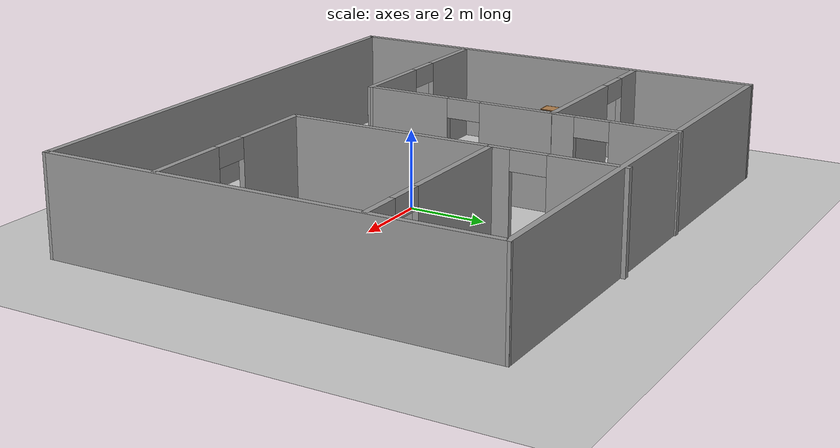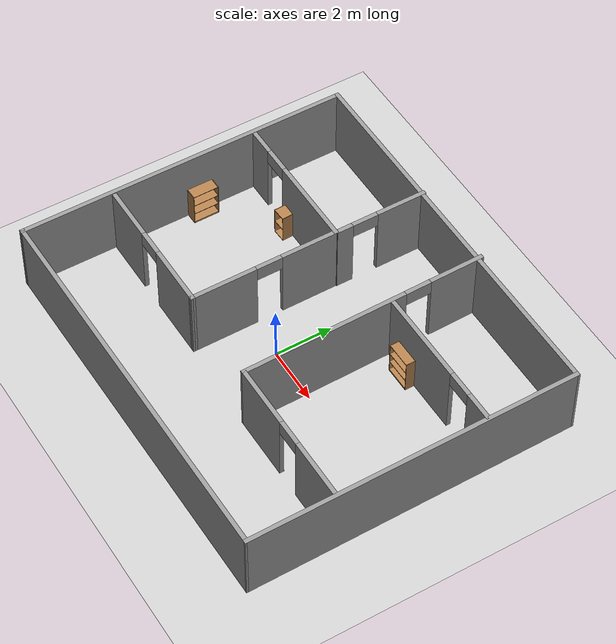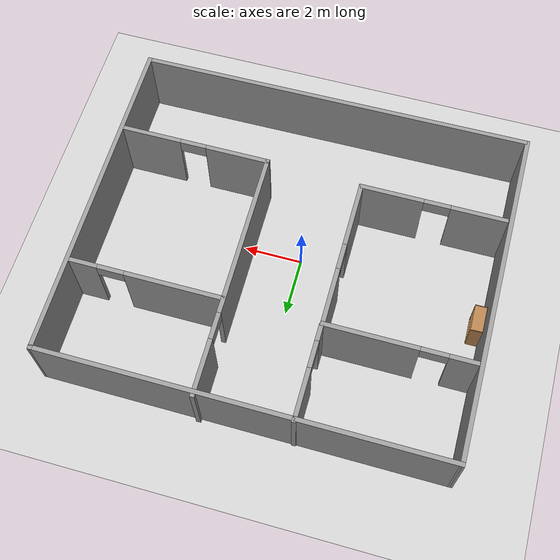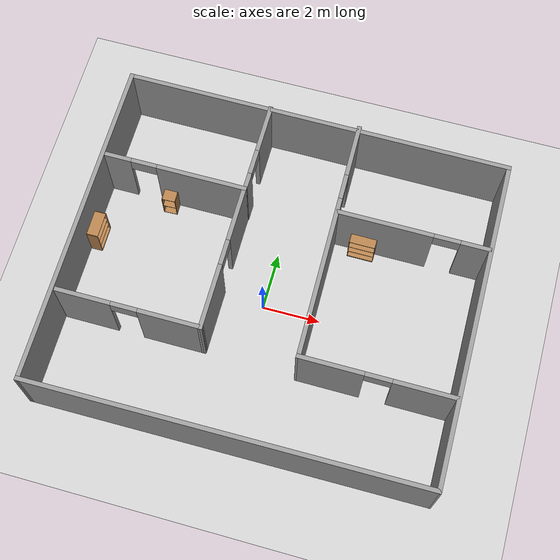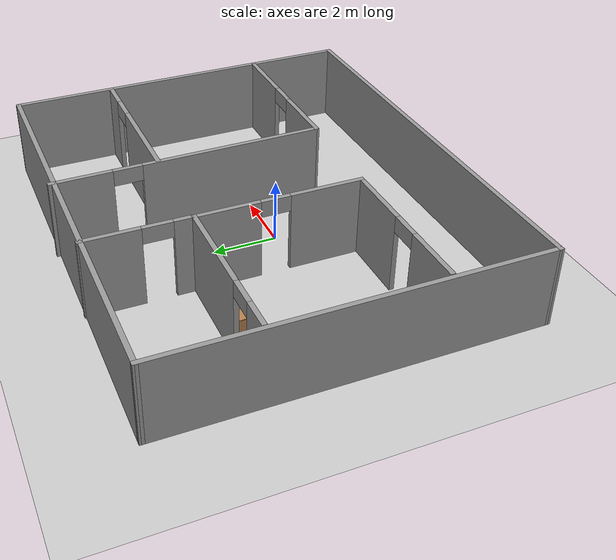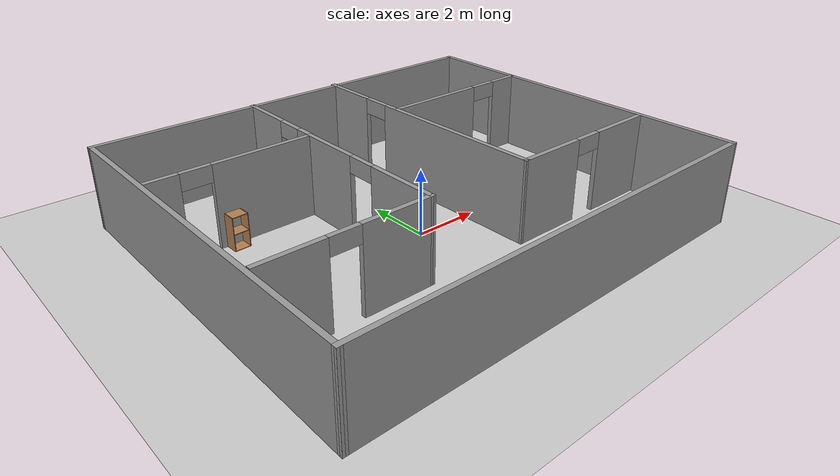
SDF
<sdf version="1.7">
 <world name="default">
  <light name="sun" type="directional">
   <pose>0 0 10 0 -0 0</pose>
   <diffuse>0.8 0.8 0.8 1</diffuse>
   <specular>0.2 0.2 0.2 1</specular>
   <attenuation>
    <range>1000</range>
    <constant>0.9</constant>
    <linear>0.01</linear>
    <quadratic>0.001</quadratic>
   </attenuation>
   <direction>-0.5 0.1 -0.9</direction>
   <spot><inner_angle>0</inner_angle><outer_angle>0</outer_angle><falloff>0</falloff></spot>
  </light>
  <model name="ground_plane">
   <static>1</static>
   <link name="link">
    <collision name="collision">
     <geometry><plane><normal>0 0 1</normal><size>100 100</size></plane></geometry>
     <surface><friction><ode><mu>100</mu><mu2>50</mu2></ode></friction></surface>
    </collision>
    <visual name="visual">
     <cast_shadows>0</cast_shadows>
     <geometry><plane><normal>0 0 1</normal><size>100 100</size></plane></geometry>
     <material>
      <script><uri>file://media/materials/scripts/gazebo.material</uri><name>Gazebo/Grey</name></script>
     </material>
    </visual>
   </link>
  </model>
  <gravity>0 0 -9.8</gravity>
  <magnetic_field>6e-06 2.3e-05 -4.2e-05</magnetic_field>
  <atmosphere type="adiabatic"/>
  <physics type="ode">
   <max_step_size>0.001</max_step_size>
   <real_time_factor>1</real_time_factor>
   <real_time_update_rate>1000</real_time_update_rate>
  </physics>
  <scene><ambient>0.4 0.4 0.4 1</ambient><background>0.7 0.7 0.7 1</background><shadows>1</shadows></scene>
  <audio><device>default</device></audio>
  <spherical_coordinates>
   <surface_model>EARTH_WGS84</surface_model>
   <latitude_deg>0</latitude_deg>
   <longitude_deg>0</longitude_deg>
   <elevation>0</elevation>
   <heading_deg>0</heading_deg>
  </spherical_coordinates>
  <model name="my_floor">
   <pose>0.238675 0.550235 0 0 -0 0</pose>
   <link name="Wall_1">
    <collision name="Wall_1_Collision">
     <geometry><box><size>13.6253 0.15 2.5</size></box></geometry>
     <pose>0 0 1.25 0 -0 0</pose>
    </collision>
    <visual name="Wall_1_Visual">
     <pose>0 0 1.25 0 -0 0</pose>
     <geometry><box><size>13.6253 0.15 2.5</size></box></geometry>
     <material>
      <script><uri>file://media/materials/scripts/gazebo.material</uri><name>Gazebo/Grey</name></script>
      <ambient>1 1 1 1</ambient>
     </material>
     <meta><layer>0</layer></meta>
    </visual>
    <pose>0 -5.70464 0 0 -0 -3.13482</pose>
   </link>
   <link name="Wall_2">
    <collision name="Wall_2_Collision">
     <geometry><box><size>11.5603 0.15 2.5</size></box></geometry>
     <pose>0 0 1.25 0 -0 0</pose>
    </collision>
    <visual name="Wall_2_Visual">
     <pose>0 0 1.25 0 -0 0</pose>
     <geometry><box><size>11.5603 0.15 2.5</size></box></geometry>
     <material>
      <script><uri>file://media/materials/scripts/gazebo.material</uri><name>Gazebo/Grey</name></script>
      <ambient>1 1 1 1</ambient>
     </material>
     <meta><layer>0</layer></meta>
    </visual>
    <pose>-6.7358 -0.045104 0 0 -0 1.5705</pose>
   </link>
   <link name="Wall_3">
    <collision name="Wall_3_Collision">
     <geometry><box><size>13.5486 0.15 2.5</size></box></geometry>
     <pose>0 0 1.25 0 -0 0</pose>
    </collision>
    <visual name="Wall_3_Visual">
     <pose>0 0 1.25 0 -0 0</pose>
     <geometry><box><size>13.5486 0.15 2.5</size></box></geometry>
     <material>
      <script><uri>file://media/materials/scripts/gazebo.material</uri><name>Gazebo/Grey</name></script>
      <ambient>1 1 1 1</ambient>
     </material>
     <meta><layer>0</layer></meta>
    </visual>
    <pose>-0.034858 5.64476 0 0 -0 -0.002283</pose>
   </link>
   <link name="Wall_35">
    <pose>-4.14035 -2.59699 0 0 -0 3.14159</pose>
    <visual name="Wall_35_Visual_0">
     <pose>-1.40271 0 1.25 0 -0 0</pose>
     <geometry><box><size>2.19458 0.15 2.5</size></box></geometry>
     <material>
      <script><uri>file://media/materials/scripts/gazebo.material</uri><name>Gazebo/Grey</name></script>
      <ambient>1 1 1 1</ambient>
     </material>
     <meta><layer>0</layer></meta>
    </visual>
    <collision name="Wall_35_Collision_0">
     <geometry><box><size>2.19458 0.15 2.5</size></box></geometry>
     <pose>-1.40271 0 1.25 0 -0 0</pose>
    </collision>
    <visual name="Wall_35_Visual_1">
     <pose>1.54729 0 1.25 0 -0 0</pose>
     <geometry><box><size>1.90542 0.15 2.5</size></box></geometry>
     <material>
      <script><uri>file://media/materials/scripts/gazebo.material</uri><name>Gazebo/Grey</name></script>
      <ambient>1 1 1 1</ambient>
     </material>
     <meta><layer>0</layer></meta>
    </visual>
    <collision name="Wall_35_Collision_1">
     <geometry><box><size>1.90542 0.15 2.5</size></box></geometry>
     <pose>1.54729 0 1.25 0 -0 0</pose>
    </collision>
    <visual name="Wall_35_Visual_2">
     <pose>0.144579 0 2.25 0 -0 0</pose>
     <geometry><box><size>0.9 0.15 0.5</size></box></geometry>
     <material>
      <script><uri>file://media/materials/scripts/gazebo.material</uri><name>Gazebo/Grey</name></script>
      <ambient>1 1 1 1</ambient>
     </material>
     <meta><layer>0</layer></meta>
    </visual>
    <collision name="Wall_35_Collision_2">
     <geometry><box><size>0.9 0.15 0.5</size></box></geometry>
     <pose>0.144579 0 2.25 0 -0 0</pose>
    </collision>
   </link>
   <link name="Wall_38">
    <pose>-1.72187 -0.049486 0 0 -0 -1.56824</pose>
    <visual name="Wall_38_Visual_0">
     <pose>-1.60831 0 1.25 0 -0 0</pose>
     <geometry><box><size>2.0284 0.15 2.5</size></box></geometry>
     <material>
      <script><uri>file://media/materials/scripts/gazebo.material</uri><name>Gazebo/Grey</name></script>
      <ambient>1 1 1 1</ambient>
     </material>
     <meta><layer>0</layer></meta>
    </visual>
    <collision name="Wall_38_Collision_0">
     <geometry><box><size>2.0284 0.15 2.5</size></box></geometry>
     <pose>-1.60831 0 1.25 0 -0 0</pose>
    </collision>
    <visual name="Wall_38_Visual_1">
     <pose>1.4642 0 1.25 0 -0 0</pose>
     <geometry><box><size>2.31662 0.15 2.5</size></box></geometry>
     <material>
      <script><uri>file://media/materials/scripts/gazebo.material</uri><name>Gazebo/Grey</name></script>
      <ambient>1 1 1 1</ambient>
     </material>
     <meta><layer>0</layer></meta>
    </visual>
    <collision name="Wall_38_Collision_1">
     <geometry><box><size>2.31662 0.15 2.5</size></box></geometry>
     <pose>1.4642 0 1.25 0 -0 0</pose>
    </collision>
    <visual name="Wall_38_Visual_2">
     <pose>-0.144109 0 2.25 0 -0 0</pose>
     <geometry><box><size>0.9 0.15 0.5</size></box></geometry>
     <material>
      <script><uri>file://media/materials/scripts/gazebo.material</uri><name>Gazebo/Grey</name></script>
      <ambient>1 1 1 1</ambient>
     </material>
     <meta><layer>0</layer></meta>
    </visual>
    <collision name="Wall_38_Collision_2">
     <geometry><box><size>0.9 0.15 0.5</size></box></geometry>
     <pose>-0.144109 0 2.25 0 -0 0</pose>
    </collision>
   </link>
   <link name="Wall_4">
    <collision name="Wall_4_Collision">
     <geometry><box><size>11.4387 0.15 2.5</size></box></geometry>
     <pose>0 0 1.25 0 -0 0</pose>
    </collision>
    <visual name="Wall_4_Visual">
     <pose>0 0 1.25 0 -0 0</pose>
     <geometry><box><size>11.4387 0.15 2.5</size></box></geometry>
     <material>
      <script><uri>file://media/materials/scripts/gazebo.material</uri><name>Gazebo/Grey</name></script>
      <ambient>1 1 1 1</ambient>
     </material>
     <meta><layer>0</layer></meta>
    </visual>
    <pose>6.70094 -0.014773 0 0 -0 -1.56432</pose>
   </link>
   <link name="Wall_41">
    <pose>-4.15338 2.49802 0 0 -0 3.14159</pose>
    <visual name="Wall_41_Visual_0">
     <pose>-0.921541 0 1.25 0 -0 0</pose>
     <geometry><box><size>3.15692 0.15 2.5</size></box></geometry>
     <material>
      <script><uri>file://media/materials/scripts/gazebo.material</uri><name>Gazebo/Grey</name></script>
      <ambient>1 1 1 1</ambient>
     </material>
     <meta><layer>0</layer></meta>
    </visual>
    <collision name="Wall_41_Collision_0">
     <geometry><box><size>3.15692 0.15 2.5</size></box></geometry>
     <pose>-0.921541 0 1.25 0 -0 0</pose>
    </collision>
    <visual name="Wall_41_Visual_1">
     <pose>2.02846 0 1.25 0 -0 0</pose>
     <geometry><box><size>0.943082 0.15 2.5</size></box></geometry>
     <material>
      <script><uri>file://media/materials/scripts/gazebo.material</uri><name>Gazebo/Grey</name></script>
      <ambient>1 1 1 1</ambient>
     </material>
     <meta><layer>0</layer></meta>
    </visual>
    <collision name="Wall_41_Collision_1">
     <geometry><box><size>0.943082 0.15 2.5</size></box></geometry>
     <pose>2.02846 0 1.25 0 -0 0</pose>
    </collision>
    <visual name="Wall_41_Visual_2">
     <pose>1.10692 0 2.25 0 -0 0</pose>
     <geometry><box><size>0.9 0.15 0.5</size></box></geometry>
     <material>
      <script><uri>file://media/materials/scripts/gazebo.material</uri><name>Gazebo/Grey</name></script>
      <ambient>1 1 1 1</ambient>
     </material>
     <meta><layer>0</layer></meta>
    </visual>
    <collision name="Wall_41_Collision_2">
     <geometry><box><size>0.9 0.15 0.5</size></box></geometry>
     <pose>1.10692 0 2.25 0 -0 0</pose>
    </collision>
   </link>
   <link name="Wall_43">
    <pose>-1.70724 4.13806 0 0 -0 -1.5708</pose>
    <visual name="Wall_43_Visual_0">
     <pose>-0.739548 0 1.25 0 -0 0</pose>
     <geometry><box><size>1.7709 0.15 2.5</size></box></geometry>
     <material>
      <script><uri>file://media/materials/scripts/gazebo.material</uri><name>Gazebo/Grey</name></script>
      <ambient>1 1 1 1</ambient>
     </material>
     <meta><layer>0</layer></meta>
    </visual>
    <collision name="Wall_43_Collision_0">
     <geometry><box><size>1.7709 0.15 2.5</size></box></geometry>
     <pose>-0.739548 0 1.25 0 -0 0</pose>
    </collision>
    <visual name="Wall_43_Visual_1">
     <pose>1.33545 0 1.25 0 -0 0</pose>
     <geometry><box><size>0.579095 0.15 2.5</size></box></geometry>
     <material>
      <script><uri>file://media/materials/scripts/gazebo.material</uri><name>Gazebo/Grey</name></script>
      <ambient>1 1 1 1</ambient>
     </material>
     <meta><layer>0</layer></meta>
    </visual>
    <collision name="Wall_43_Collision_1">
     <geometry><box><size>0.579095 0.15 2.5</size></box></geometry>
     <pose>1.33545 0 1.25 0 -0 0</pose>
    </collision>
    <visual name="Wall_43_Visual_2">
     <pose>0.595905 0 2.25 0 -0 0</pose>
     <geometry><box><size>0.9 0.15 0.5</size></box></geometry>
     <material>
      <script><uri>file://media/materials/scripts/gazebo.material</uri><name>Gazebo/Grey</name></script>
      <ambient>1 1 1 1</ambient>
     </material>
     <meta><layer>0</layer></meta>
    </visual>
    <collision name="Wall_43_Collision_2">
     <geometry><box><size>0.9 0.15 0.5</size></box></geometry>
     <pose>0.595905 0 2.25 0 -0 0</pose>
    </collision>
   </link>
   <link name="Wall_45">
    <pose>1.48234 1.52881 0 0 -0 -1.5563</pose>
    <visual name="Wall_45_Visual_0">
     <pose>-3.33482 0 1.25 0 -0 0</pose>
     <geometry><box><size>1.92302 0.15 2.5</size></box></geometry>
     <material>
      <script><uri>file://media/materials/scripts/gazebo.material</uri><name>Gazebo/Grey</name></script>
      <ambient>1 1 1 1</ambient>
     </material>
     <meta><layer>0</layer></meta>
    </visual>
    <collision name="Wall_45_Collision_0">
     <geometry><box><size>1.92302 0.15 2.5</size></box></geometry>
     <pose>-3.33482 0 1.25 0 -0 0</pose>
    </collision>
    <visual name="Wall_45_Visual_1">
     <pose>1.41151 0 1.25 0 -0 0</pose>
     <geometry><box><size>5.76964 0.15 2.5</size></box></geometry>
     <material>
      <script><uri>file://media/materials/scripts/gazebo.material</uri><name>Gazebo/Grey</name></script>
      <ambient>1 1 1 1</ambient>
     </material>
     <meta><layer>0</layer></meta>
    </visual>
    <collision name="Wall_45_Collision_1">
     <geometry><box><size>5.76964 0.15 2.5</size></box></geometry>
     <pose>1.41151 0 1.25 0 -0 0</pose>
    </collision>
    <visual name="Wall_45_Visual_2">
     <pose>-1.92331 0 2.25 0 -0 0</pose>
     <geometry><box><size>0.9 0.15 0.5</size></box></geometry>
     <material>
      <script><uri>file://media/materials/scripts/gazebo.material</uri><name>Gazebo/Grey</name></script>
      <ambient>1 1 1 1</ambient>
     </material>
     <meta><layer>0</layer></meta>
    </visual>
    <collision name="Wall_45_Collision_2">
     <geometry><box><size>0.9 0.15 0.5</size></box></geometry>
     <pose>-1.92331 0 2.25 0 -0 0</pose>
    </collision>
   </link>
   <link name="Wall_49">
    <pose>4.09352 -2.69208 0 0 -0 0</pose>
    <visual name="Wall_49_Visual_0">
     <pose>-1.51242 0 1.25 0 -0 0</pose>
     <geometry><box><size>2.22517 0.15 2.5</size></box></geometry>
     <material>
      <script><uri>file://media/materials/scripts/gazebo.material</uri><name>Gazebo/Grey</name></script>
      <ambient>1 1 1 1</ambient>
     </material>
     <meta><layer>0</layer></meta>
    </visual>
    <collision name="Wall_49_Collision_0">
     <geometry><box><size>2.22517 0.15 2.5</size></box></geometry>
     <pose>-1.51242 0 1.25 0 -0 0</pose>
    </collision>
    <visual name="Wall_49_Visual_1">
     <pose>1.56258 0 1.25 0 -0 0</pose>
     <geometry><box><size>2.12483 0.15 2.5</size></box></geometry>
     <material>
      <script><uri>file://media/materials/scripts/gazebo.material</uri><name>Gazebo/Grey</name></script>
      <ambient>1 1 1 1</ambient>
     </material>
     <meta><layer>0</layer></meta>
    </visual>
    <collision name="Wall_49_Collision_1">
     <geometry><box><size>2.12483 0.15 2.5</size></box></geometry>
     <pose>1.56258 0 1.25 0 -0 0</pose>
    </collision>
    <visual name="Wall_49_Visual_2">
     <pose>0.050169 0 2.25 0 -0 0</pose>
     <geometry><box><size>0.9 0.15 0.5</size></box></geometry>
     <material>
      <script><uri>file://media/materials/scripts/gazebo.material</uri><name>Gazebo/Grey</name></script>
      <ambient>1 1 1 1</ambient>
     </material>
     <meta><layer>0</layer></meta>
    </visual>
    <collision name="Wall_49_Collision_2">
     <geometry><box><size>0.9 0.15 0.5</size></box></geometry>
     <pose>0.050169 0 2.25 0 -0 0</pose>
    </collision>
   </link>
   <link name="Wall_51">
    <pose>4.0715 2.50713 0 0 -0 3.14159</pose>
    <visual name="Wall_51_Visual_0">
     <pose>-2.10893 0 1.25 0 -0 0</pose>
     <geometry><box><size>1.03215 0.15 2.5</size></box></geometry>
     <material>
      <script><uri>file://media/materials/scripts/gazebo.material</uri><name>Gazebo/Grey</name></script>
      <ambient>1 1 1 1</ambient>
     </material>
     <meta><layer>0</layer></meta>
    </visual>
    <collision name="Wall_51_Collision_0">
     <geometry><box><size>1.03215 0.15 2.5</size></box></geometry>
     <pose>-2.10893 0 1.25 0 -0 0</pose>
    </collision>
    <visual name="Wall_51_Visual_1">
     <pose>0.966075 0 1.25 0 -0 0</pose>
     <geometry><box><size>3.31785 0.15 2.5</size></box></geometry>
     <material>
      <script><uri>file://media/materials/scripts/gazebo.material</uri><name>Gazebo/Grey</name></script>
      <ambient>1 1 1 1</ambient>
     </material>
     <meta><layer>0</layer></meta>
    </visual>
    <collision name="Wall_51_Collision_1">
     <geometry><box><size>3.31785 0.15 2.5</size></box></geometry>
     <pose>0.966075 0 1.25 0 -0 0</pose>
    </collision>
    <visual name="Wall_51_Visual_2">
     <pose>-1.14285 0 2.25 0 -0 0</pose>
     <geometry><box><size>0.9 0.15 0.5</size></box></geometry>
     <material>
      <script><uri>file://media/materials/scripts/gazebo.material</uri><name>Gazebo/Grey</name></script>
      <ambient>1 1 1 1</ambient>
     </material>
     <meta><layer>0</layer></meta>
    </visual>
    <collision name="Wall_51_Collision_2">
     <geometry><box><size>0.9 0.15 0.5</size></box></geometry>
     <pose>-1.14285 0 2.25 0 -0 0</pose>
    </collision>
   </link>
   <static>1</static>
  </model>
  <model name="cabinet">
   <static>1</static>
   <link name="cabinet_bottom_plate">
    <inertial>
     <pose>0 0 -1 0 -0 0</pose>
     <inertia><ixx>2.05</ixx><ixy>0</ixy><ixz>0</ixz><iyy>2.05</iyy><iyz>0</iyz><izz>2.05</izz></inertia>
     <mass>25</mass>
    </inertial>
    <collision name="cabinet_bottom_plate_geom">
     <pose>0 0 0.01 0 -0 0</pose>
     <geometry><box><size>0.45 0.45 0.02</size></box></geometry>
    </collision>
    <visual name="cabinet_bottom_plate_geom_visual">
     <pose>0 0 0.01 0 -0 0</pose>
     <geometry><box><size>0.45 0.45 0.02</size></box></geometry>
     <material>
      <script><uri>file://media/materials/scripts/gazebo.material</uri><name>Gazebo/Wood</name></script>
     </material>
    </visual>
    <collision name="cabinet_bottom_plate_geom_cabinet_back_plate">
     <pose>0.235 0 0.51 0 -0 0</pose>
     <geometry><box><size>0.02 0.45 1.02</size></box></geometry>
    </collision>
    <visual name="cabinet_bottom_plate_geom_cabinet_back_plate_visual">
     <pose>0.235 0 0.51 0 -0 0</pose>
     <geometry><box><size>0.02 0.45 1.02</size></box></geometry>
     <material>
      <script><uri>file://media/materials/scripts/gazebo.material</uri><name>Gazebo/Wood</name></script>
     </material>
    </visual>
    <collision name="cabinet_bottom_plate_geom_cabinet_left_plate">
     <pose>0 0.235 0.51 0 -0 0</pose>
     <geometry><box><size>0.45 0.02 1.02</size></box></geometry>
    </collision>
    <visual name="cabinet_bottom_plate_geom_cabinet_left_plate_visual">
     <pose>0 0.235 0.51 0 -0 0</pose>
     <geometry><box><size>0.45 0.02 1.02</size></box></geometry>
     <material>
      <script><uri>file://media/materials/scripts/gazebo.material</uri><name>Gazebo/Wood</name></script>
     </material>
    </visual>
    <collision name="cabinet_bottom_plate_geom_cabinet_middle_plate">
     <pose>0 0 0.51 0 -0 0</pose>
     <geometry><box><size>0.45 0.45 0.02</size></box></geometry>
    </collision>
    <visual name="cabinet_bottom_plate_geom_cabinet_middle_plate_visual">
     <pose>0 0 0.51 0 -0 0</pose>
     <geometry><box><size>0.45 0.45 0.02</size></box></geometry>
     <material>
      <script><uri>file://media/materials/scripts/gazebo.material</uri><name>Gazebo/Wood</name></script>
     </material>
    </visual>
    <collision name="cabinet_bottom_plate_geom_cabinet_right_plate">
     <pose>0 -0.235 0.51 0 -0 0</pose>
     <geometry><box><size>0.45 0.02 1.02</size></box></geometry>
    </collision>
    <visual name="cabinet_bottom_plate_geom_cabinet_right_plate_visual">
     <pose>0 -0.235 0.51 0 -0 0</pose>
     <geometry><box><size>0.45 0.02 1.02</size></box></geometry>
     <material>
      <script><uri>file://media/materials/scripts/gazebo.material</uri><name>Gazebo/Wood</name></script>
     </material>
    </visual>
    <collision name="cabinet_bottom_plate_geom_cabinet_top_plate">
     <pose>0 0 1.01 0 -0 0</pose>
     <geometry><box><size>0.45 0.45 0.02</size></box></geometry>
    </collision>
    <visual name="cabinet_bottom_plate_geom_cabinet_top_plate_visual">
     <pose>0 0 1.01 0 -0 0</pose>
     <geometry><box><size>0.45 0.45 0.02</size></box></geometry>
     <material>
      <script><uri>file://media/materials/scripts/gazebo.material</uri><name>Gazebo/Wood</name></script>
     </material>
    </visual>
   </link>
   <pose>-4.15753 2.8043 0 0 -0 1.60747</pose>
  </model>
  <model name="bookshelf">
   <static>1</static>
   <link name="link">
    <inertial><mass>1</mass></inertial>
    <collision name="back">
     <pose>0 0.005 0.6 0 -0 0</pose>
     <geometry><box><size>0.9 0.01 1.2</size></box></geometry>
    </collision>
    <visual name="visual1">
     <pose>0 0.005 0.6 0 -0 0</pose>
     <geometry><box><size>0.9 0.01 1.2</size></box></geometry>
     <material>
      <script><uri>file://media/materials/scripts/gazebo.material</uri><name>Gazebo/Wood</name></script>
     </material>
    </visual>
    <collision name="left_side">
     <pose>0.45 -0.195 0.6 0 -0 0</pose>
     <geometry><box><size>0.02 0.4 1.2</size></box></geometry>
    </collision>
    <visual name="visual2">
     <pose>0.45 -0.195 0.6 0 -0 0</pose>
     <geometry><box><size>0.02 0.4 1.2</size></box></geometry>
     <material>
      <script><uri>file://media/materials/scripts/gazebo.material</uri><name>Gazebo/Wood</name></script>
     </material>
    </visual>
    <collision name="right_side">
     <pose>-0.45 -0.195 0.6 0 -0 0</pose>
     <geometry><box><size>0.02 0.4 1.2</size></box></geometry>
    </collision>
    <visual name="visual3">
     <pose>-0.45 -0.195 0.6 0 -0 0</pose>
     <geometry><box><size>0.02 0.4 1.2</size></box></geometry>
     <material>
      <script><uri>file://media/materials/scripts/gazebo.material</uri><name>Gazebo/Wood</name></script>
     </material>
    </visual>
    <collision name="bottom">
     <pose>0 -0.195 0.03 0 -0 0</pose>
     <geometry><box><size>0.88 0.4 0.06</size></box></geometry>
    </collision>
    <visual name="visual4">
     <pose>0 -0.195 0.03 0 -0 0</pose>
     <geometry><box><size>0.88 0.4 0.06</size></box></geometry>
     <material>
      <script><uri>file://media/materials/scripts/gazebo.material</uri><name>Gazebo/Wood</name></script>
     </material>
    </visual>
    <collision name="top">
     <pose>0 -0.195 1.19 0 -0 0</pose>
     <geometry><box><size>0.88 0.4 0.02</size></box></geometry>
    </collision>
    <visual name="visual5">
     <pose>0 -0.195 1.19 0 -0 0</pose>
     <geometry><box><size>0.88 0.4 0.02</size></box></geometry>
     <material>
      <script><uri>file://media/materials/scripts/gazebo.material</uri><name>Gazebo/Wood</name></script>
     </material>
    </visual>
    <collision name="low_shelf">
     <pose>0 -0.195 0.43 0 -0 0</pose>
     <geometry><box><size>0.88 0.4 0.02</size></box></geometry>
    </collision>
    <visual name="visual6">
     <pose>0 -0.195 0.43 0 -0 0</pose>
     <geometry><box><size>0.88 0.4 0.02</size></box></geometry>
     <material>
      <script><uri>file://media/materials/scripts/gazebo.material</uri><name>Gazebo/Wood</name></script>
     </material>
    </visual>
    <collision name="high_shelf">
     <pose>0 -0.195 0.8 0 -0 0</pose>
     <geometry><box><size>0.88 0.4 0.02</size></box></geometry>
    </collision>
    <visual name="visual7">
     <pose>0 -0.195 0.8 0 -0 0</pose>
     <geometry><box><size>0.88 0.4 0.02</size></box></geometry>
     <material>
      <script><uri>file://media/materials/scripts/gazebo.material</uri><name>Gazebo/Wood</name></script>
     </material>
    </visual>
   </link>
   <pose>2.76293 3.0546 0 0 -0 0</pose>
  </model>
  <model name="bookshelf_0">
   <static>1</static>
   <link name="link">
    <inertial><mass>1</mass></inertial>
    <collision name="back">
     <pose>0 0.005 0.6 0 -0 0</pose>
     <geometry><box><size>0.9 0.01 1.2</size></box></geometry>
    </collision>
    <visual name="visual1">
     <pose>0 0.005 0.6 0 -0 0</pose>
     <geometry><box><size>0.9 0.01 1.2</size></box></geometry>
     <material>
      <script><uri>file://media/materials/scripts/gazebo.material</uri><name>Gazebo/Wood</name></script>
     </material>
    </visual>
    <collision name="left_side">
     <pose>0.45 -0.195 0.6 0 -0 0</pose>
     <geometry><box><size>0.02 0.4 1.2</size></box></geometry>
    </collision>
    <visual name="visual2">
     <pose>0.45 -0.195 0.6 0 -0 0</pose>
     <geometry><box><size>0.02 0.4 1.2</size></box></geometry>
     <material>
      <script><uri>file://media/materials/scripts/gazebo.material</uri><name>Gazebo/Wood</name></script>
     </material>
    </visual>
    <collision name="right_side">
     <pose>-0.45 -0.195 0.6 0 -0 0</pose>
     <geometry><box><size>0.02 0.4 1.2</size></box></geometry>
    </collision>
    <visual name="visual3">
     <pose>-0.45 -0.195 0.6 0 -0 0</pose>
     <geometry><box><size>0.02 0.4 1.2</size></box></geometry>
     <material>
      <script><uri>file://media/materials/scripts/gazebo.material</uri><name>Gazebo/Wood</name></script>
     </material>
    </visual>
    <collision name="bottom">
     <pose>0 -0.195 0.03 0 -0 0</pose>
     <geometry><box><size>0.88 0.4 0.06</size></box></geometry>
    </collision>
    <visual name="visual4">
     <pose>0 -0.195 0.03 0 -0 0</pose>
     <geometry><box><size>0.88 0.4 0.06</size></box></geometry>
     <material>
      <script><uri>file://media/materials/scripts/gazebo.material</uri><name>Gazebo/Wood</name></script>
     </material>
    </visual>
    <collision name="top">
     <pose>0 -0.195 1.19 0 -0 0</pose>
     <geometry><box><size>0.88 0.4 0.02</size></box></geometry>
    </collision>
    <visual name="visual5">
     <pose>0 -0.195 1.19 0 -0 0</pose>
     <geometry><box><size>0.88 0.4 0.02</size></box></geometry>
     <material>
      <script><uri>file://media/materials/scripts/gazebo.material</uri><name>Gazebo/Wood</name></script>
     </material>
    </visual>
    <collision name="low_shelf">
     <pose>0 -0.195 0.43 0 -0 0</pose>
     <geometry><box><size>0.88 0.4 0.02</size></box></geometry>
    </collision>
    <visual name="visual6">
     <pose>0 -0.195 0.43 0 -0 0</pose>
     <geometry><box><size>0.88 0.4 0.02</size></box></geometry>
     <material>
      <script><uri>file://media/materials/scripts/gazebo.material</uri><name>Gazebo/Wood</name></script>
     </material>
    </visual>
    <collision name="high_shelf">
     <pose>0 -0.195 0.8 0 -0 0</pose>
     <geometry><box><size>0.88 0.4 0.02</size></box></geometry>
    </collision>
    <visual name="visual7">
     <pose>0 -0.195 0.8 0 -0 0</pose>
     <geometry><box><size>0.88 0.4 0.02</size></box></geometry>
     <material>
      <script><uri>file://media/materials/scripts/gazebo.material</uri><name>Gazebo/Wood</name></script>
     </material>
    </visual>
   </link>
   <pose>-6.41649 0.993472 0 0 -0 1.57852</pose>
  </model>
 </world>
</sdf>
